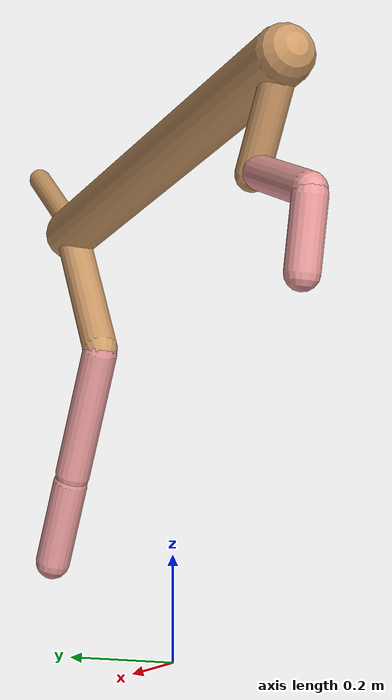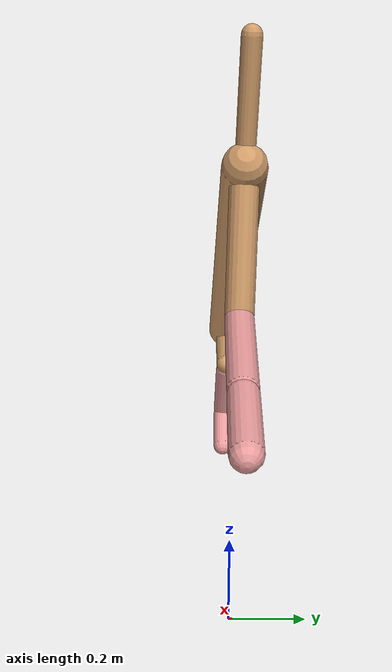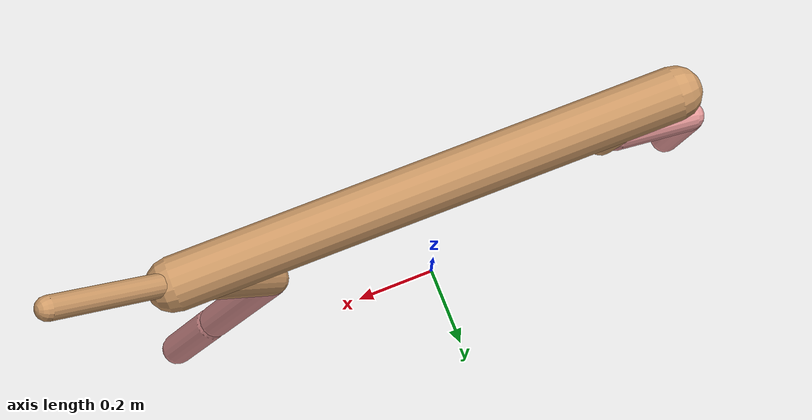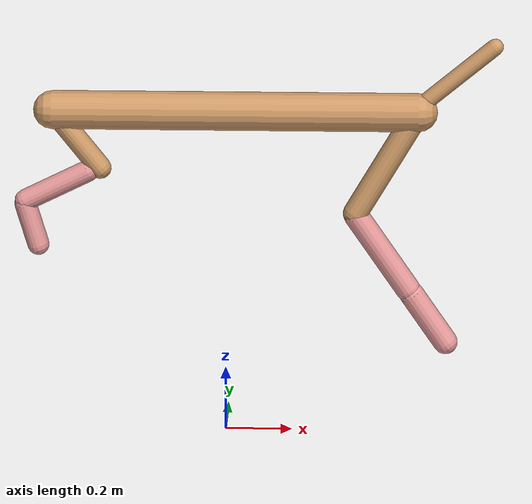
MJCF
<mujoco model="cheetah">
  <compiler angle="radian" coordinate="local" inertiafromgeom="true" settotalmass="14" />
  <default>
    <joint armature=".1" damping=".01" limited="true" solimplimit="0 .8 .03" solreflimit=".02 1" stiffness="8" />
    <geom conaffinity="0" condim="3" contype="1" friction="0.8 .1 .1" rgba="0.8 0.6 .4 1" solimp="0.0 0.8 0.01" solref="0.02 1" />
    <motor ctrllimited="true" ctrlrange="-1 1" />
  </default>
  <size nstack="300000" nuser_geom="1" />
  <option gravity="0 0 -9.81" timestep="0.01" />
  <worldbody>
    <body name="torso" pos="0.0 0.0 1.0004535175483067">
      <joint armature="0" axis="1 0 0" damping="0" limited="false" name="ignorex" pos="0 0 0" stiffness="0" type="slide" />
      <joint armature="0" axis="0 0 1" damping="0" limited="false" name="ignorez" pos="0 0 0" stiffness="0" type="slide" />
      <joint armature="0" axis="0 1 0" damping="0" limited="false" name="ignorey" pos="0 0 0" stiffness="0" type="hinge" />
      <geom fromto="-0.5 0.0 0.0 0.5604052045579234 0.0 0.0" name="torso" size="0.05629587023982592" type="capsule" />
      <geom axisangle="0 1 0 .87" name="head" pos="0.6604052045579233 0.0 0.1" size="0.024495220497308644 0.15" type="capsule" />

      <body name="bthigh" pos="-.5 0 0">
        <joint axis="0 1 0" damping="6" name="bthigh" pos="0 0 0" range="-.52 1.05" stiffness="240" type="hinge" />
        <geom axisangle="0 1 0 -3.8" name="bthigh" pos="0.0734775819030384 0.0 -0.0955208564739499" size="0.0322 0.10149999999999999" type="capsule" />
        <body name="bshin" pos="0.10695516380607678 0.0 -0.18104171294789978">
          <joint axis="0 1 0" damping="4.5" name="bshin" pos="0 0 0" range="-.785 .785" stiffness="180" type="hinge" />
          <geom axisangle="0 1 0 -2.03" name="bshin" pos="-0.0997507764050038 0.0 -0.0498753882025019" rgba="0.9 0.6 0.6 1" size="0.0322 0.105" type="capsule" />
          <body name="bfoot" pos="-0.1995015528100076 0.0 -0.0997507764050038">
            <joint axis="0 1 0" damping="3" name="bfoot" pos="0 0 0" range="-.4 .785" stiffness="120" type="hinge" />
            <geom axisangle="0 1 0 -.27" name="bfoot" pos="0.021667753813597694 0.0 -0.07005907066396588" rgba="0.9 0.6 0.6 1" size="0.0322 0.0658" type="capsule" />
            <inertial mass="10" />
          </body>
        </body>
      </body>
      <body name="fthigh" pos="0.5604052045579233 0.0 0.0">
        <joint axis="0 1 0" damping="4.5" name="fthigh" pos="0 0 0" range="-1.5 0.8" stiffness="180" type="hinge" />
        <geom axisangle="0 1 0 .52" name="fthigh" pos="-0.0910615547356152 0.0 -0.15610552240391173" size="0.036599334791729006 0.17479949564218075" type="capsule" />
        <body name="fshin" pos="-0.1821231094712304 0.0 -0.31221104480782347">
          <joint axis="0 1 0" damping="3" name="fshin" pos="0 0 0" range="-1.2 1.1" stiffness="120" type="hinge" />
          <geom axisangle="0 1 0 -.6" name="fshin" pos="0.0845049642445057 0.0 -0.11700687356931556" rgba="0.9 0.6 0.6 1" size="0.036599334791729006 0.13931388374489592" type="capsule" />
          <body name="ffoot" pos="0.1690099284890114 0.0 -0.23401374713863113">
            <joint axis="0 1 0" damping="1.5" name="ffoot" pos="0 0 0" range="-3.1 -0.3" stiffness="60" type="hinge" />
            <geom axisangle="0 1 0 -.6" name="ffoot" pos="0.05689652346399197 0.0 -0.08850570316620975" rgba="0.9 0.6 0.6 1" size="0.036599334791729006 0.09199973454851619" type="capsule" />
            <inertial mass="10" />
          </body>
        </body>
      </body>
    </body>
  </worldbody>
  <actuator>
    <motor gear="120" joint="bthigh" name="bthigh" />
    <motor gear="90" joint="bshin" name="bshin" />
    <motor gear="60" joint="bfoot" name="bfoot" />
    <motor gear="120" joint="fthigh" name="fthigh" />
    <motor gear="60" joint="fshin" name="fshin" />
    <motor gear="30" joint="ffoot" name="ffoot" />
  </actuator>
</mujoco>
